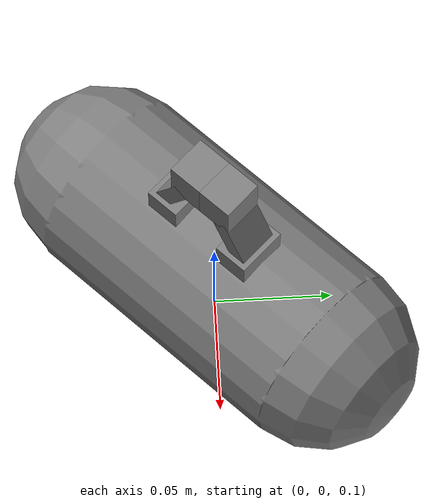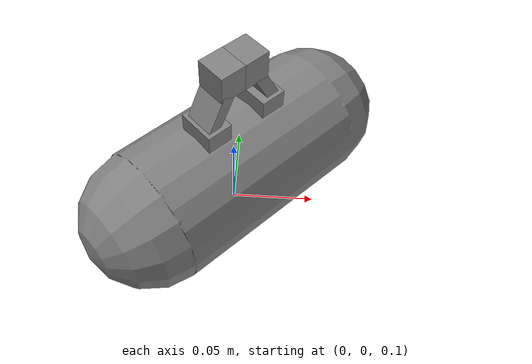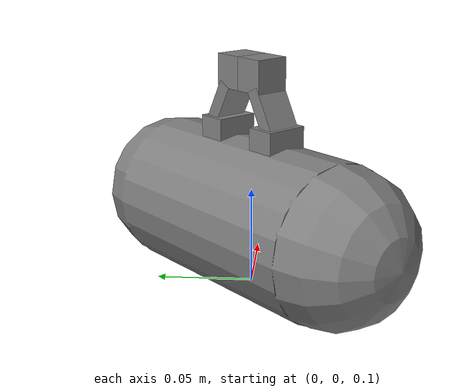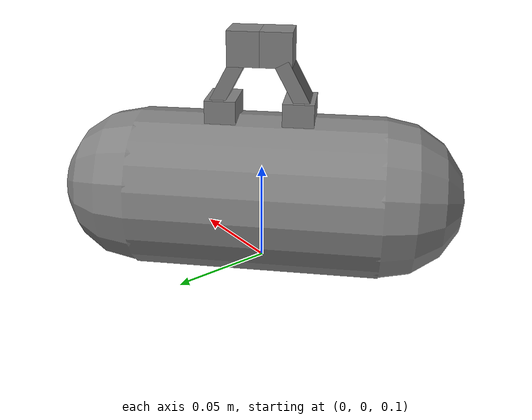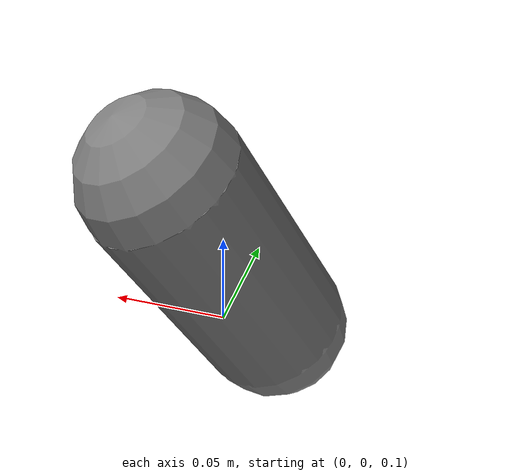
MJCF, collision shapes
<mujoco model="panda_hand">
  <compiler angle="radian"  autolimits="true"/>

  <default>
    <default class="panda">
      <material specular="0.5" shininess="0.25"/>
      <default class="finger">
        <joint axis="0 1 0" type="slide" range="0 0.04"/>
      </default>
      <default class="visual">
        <geom type="mesh" contype="0" conaffinity="0" group="2"/>
      </default>
      <default class="collision">
        <geom group="3" type="mesh" contype="0" conaffinity="0"/>
        <default class="primitive_collision">
          <geom group="3" type="box" contype="0" conaffinity="0"
           condim="3" solimp="0.99 0.995 0.01" solref="0.01 1" friction="1 0.005 0.0001"/>
          <default class="fingertip_pad_collision_1">
            <geom type="box" size="0.011 0.0075 0.01" pos="0 0.0185 0.011"/>
          </default>
          <default class="fingertip_pad_collision_2">
            <geom type="box" size="0.011 0.0044 0.0019" pos="0 0.0068 0.0022"/>
          </default>
          <default class="fingertip_pad_collision_3">
            <geom type="box" size="0.00875 0.0035 0.01175" pos="0 0.0159 0.02835" quat="1 0.25 0 0"/>
          </default>
          <default class="fingertip_pad_collision_4">
            <geom type="box" size="0.00875 0.0076 0.00825" pos="0 0.00758 0.04525" conaffinity="3"/>
          </default>
        </default>
      </default>
    </default>
  </default>

  <asset>
    <material class="panda" name="white" rgba="1 1 1 1"/>
    <material class="panda" name="off_white" rgba="0.901961 0.921569 0.929412 1"/>
    <material class="panda" name="black" rgba="0.25 0.25 0.25 1"/>

    <mesh name="hand_c" file="../meshes/hand.stl"/>
    <mesh file="../meshes/hand_0.obj"/>
    <mesh file="../meshes/hand_1.obj"/>
    <mesh file="../meshes/hand_2.obj"/>
    <mesh file="../meshes/hand_3.obj"/>
    <mesh file="../meshes/hand_4.obj"/>
    <mesh file="../meshes/finger_0.obj"/>
    <mesh file="../meshes/finger_1.obj"/>
  </asset>

  <worldbody>
    <body name="hand" pos="0 0 0.107" quat="0.9238795 0 0 -0.3826834">
      <inertial mass="0.73" pos="-0.01 0 0.03" diaginertia="0.001 0.0025 0.0017"/>
      <geom mesh="hand_0" material="off_white" class="visual"/>
      <geom mesh="hand_1" material="black" class="visual"/>
      <geom mesh="hand_2" material="black" class="visual"/>
      <geom mesh="hand_3" material="white" class="visual"/>
      <geom mesh="hand_4" material="off_white" class="visual"/>
      <geom mesh="hand_c" class="collision"/>
      <geom name="hand_capsule" type="capsule"
       class="collision" conaffinity="1" size="0.04 0.06"
       quat="1 1 0 0" pos="0 0 0.03"/>
      <site name="gripper" pos="0 0 0.1"/>
      <body name="left_finger" pos="0 0 0.0584">
        <inertial mass="0.015" pos="0 0 0" diaginertia="2.375e-6 2.375e-6 7.5e-7"/>
        <joint name="finger_joint1" class="finger" damping="10"/>
        <geom mesh="finger_0" material="off_white" class="visual"/>
        <geom mesh="finger_1" material="black" class="visual"/>
        <geom mesh="finger_0" class="collision"/>
        <geom class="fingertip_pad_collision_1"/>
        <geom class="fingertip_pad_collision_2"/>
        <geom class="fingertip_pad_collision_3"/>
        <geom name="left_finger_pad" class="fingertip_pad_collision_4"/>
      </body>
      <body name="right_finger" pos="0 0 0.0584" quat="0 0 0 1">
        <inertial mass="0.015" pos="0 0 0" diaginertia="2.375e-6 2.375e-6 7.5e-7"/>
        <joint name="finger_joint2" class="finger" damping="10"/>
        <geom mesh="finger_0" material="off_white" class="visual"/>
        <geom mesh="finger_1" material="black" class="visual"/>
        <geom mesh="finger_0" class="collision"/>
        <geom class="fingertip_pad_collision_1"/>
        <geom class="fingertip_pad_collision_2"/>
        <geom class="fingertip_pad_collision_3"/>
        <geom name="right_finger_pad" class="fingertip_pad_collision_4"/>
      </body>
    </body>
  </worldbody>

  <equality>
    <joint joint1="finger_joint1" joint2="finger_joint2" solimp="0.95 0.99 0.001" solref="0.005 1"/>
  </equality>

  <actuator>
    <general class="panda" name="actuator8" joint="finger_joint1"
     ctrlrange="0 0.04" gainprm="350 0 0" biasprm="0 -350 -10" forcerange="-200 200"/>
  </actuator>
</mujoco>
